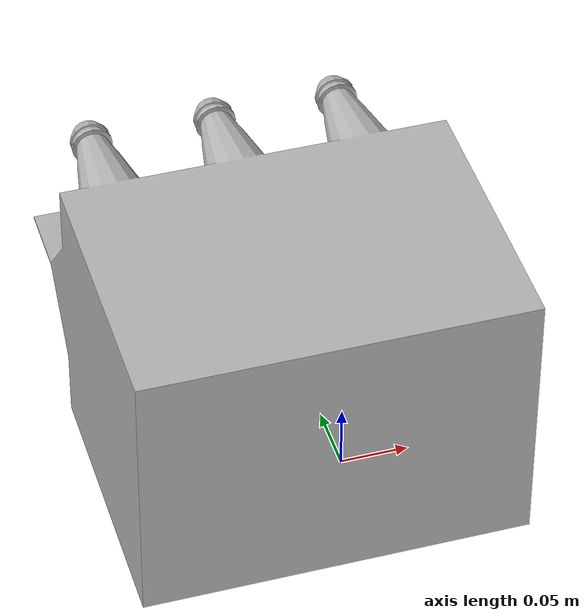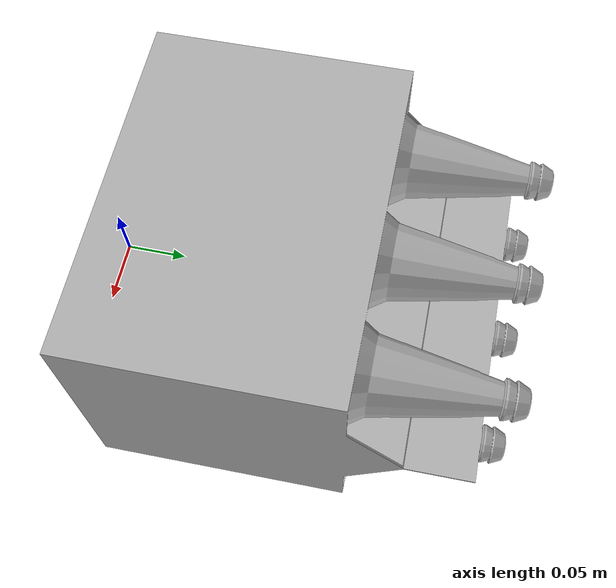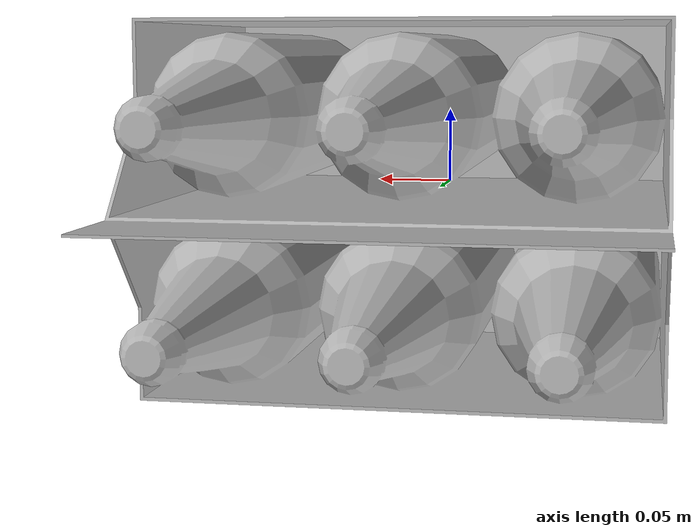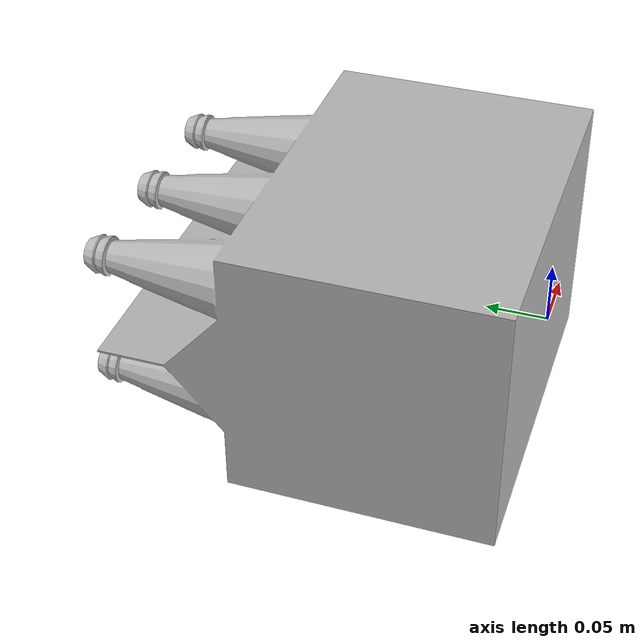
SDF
<?xml version='1.0'?>
<sdf version='1.4'>
  <model name='265'>
    <pose>0 0 0 0 0 0</pose>
    <static>true</static>
    <link name='link'>
      <collision name='collision'>
        <pose>0 0 0 0 0 0</pose>
        <geometry>
          <box>
            <size>0.21878 0.298764 2</size>
          </box>
        </geometry>
      </collision>
      <visual name='visual'>
        <pose>0 0 0 0 0 0</pose>
        <geometry>
          <mesh><uri>model://265/265.dae</uri></mesh>
        </geometry>
      </visual>
    </link>
  </model>
</sdf>
